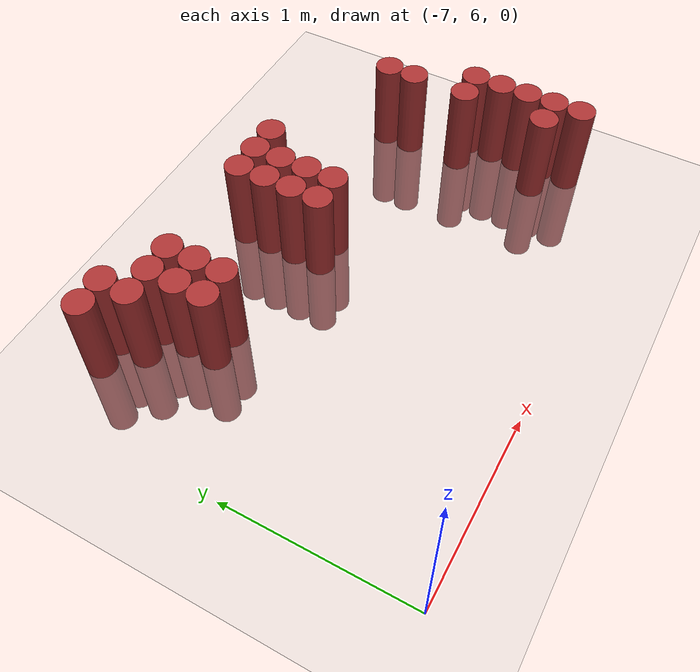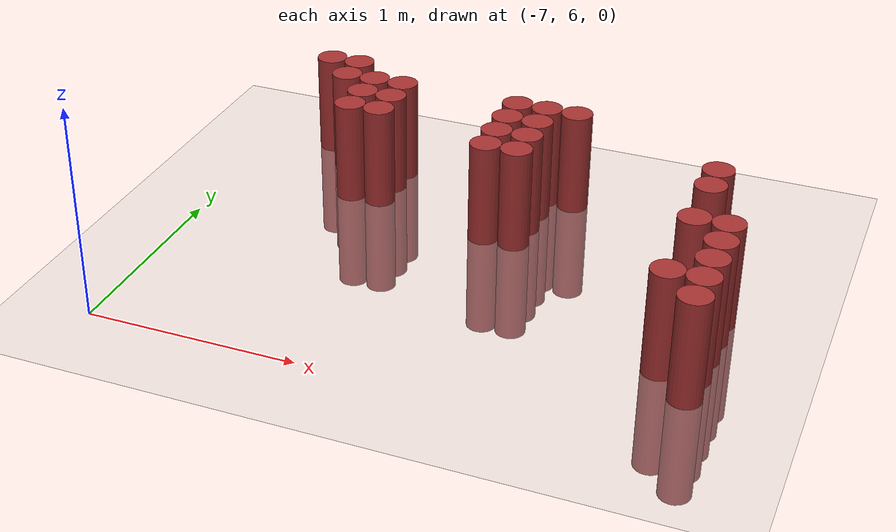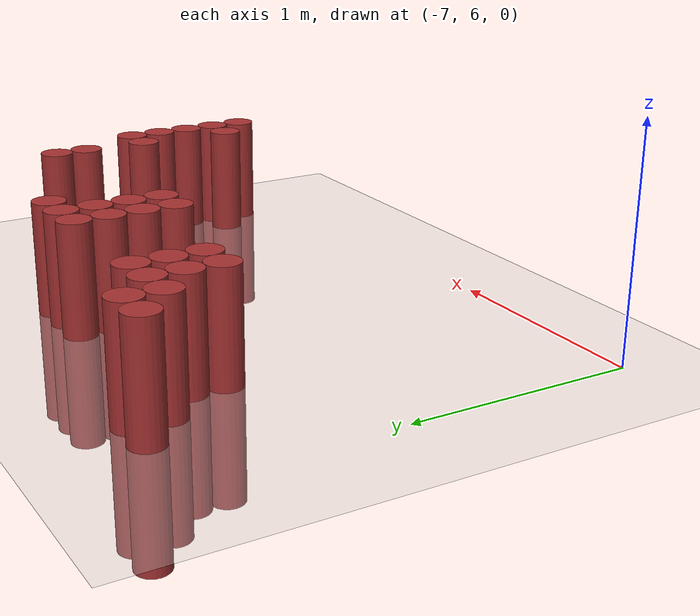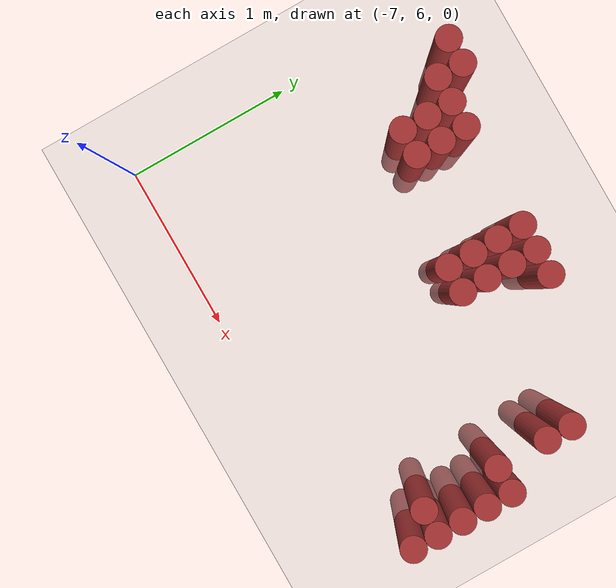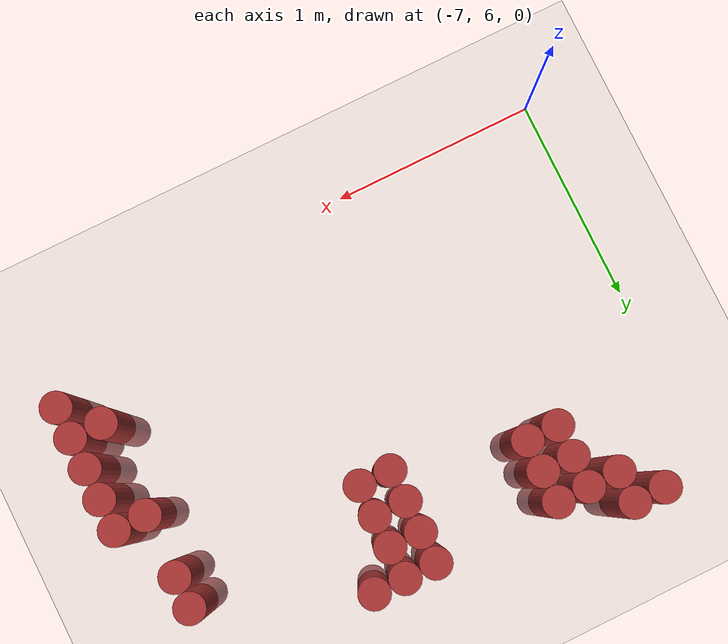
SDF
<sdf version="1.6">
 <world name="default">
  <model name="ground_plane">
   <static>1</static>
   <link name="link">
    <collision name="collision">
     <geometry><plane><normal>0 0 1</normal><size>100 100</size></plane></geometry>
     <surface><friction><ode><mu>100</mu><mu2>50</mu2></ode></friction></surface>
    </collision>
    <visual name="visual">
     <cast_shadows>0</cast_shadows>
     <geometry><plane><normal>0 0 1</normal><size>100 100</size></plane></geometry>
     <material>
      <script><uri>file://media/materials/scripts/gazebo.material</uri><name>Gazebo/Grey</name></script>
     </material>
    </visual>
   </link>
  </model>
  <model name="unit_cylinder_218">
   <static>1</static>
   <pose>-6.675000 7.875000 0.000000 0.000000 0.000000 0.000000</pose>
   <link name="link">
    <inertial>
     <mass>1</mass>
     <inertia><ixx>0.145833</ixx><ixy>0</ixy><ixz>0</ixz><iyy>0.145833</iyy><iyz>0</iyz><izz>0.125</izz></inertia>
    </inertial>
    <collision name="collision">
     <geometry><cylinder><radius>0.075000</radius><length>1</length></cylinder></geometry>
    </collision>
    <visual name="visual">
     <geometry><cylinder><radius>0.075000</radius><length>1</length></cylinder></geometry>
     <material>
      <ambient>0.648000 0.192000 0.192000 1</ambient>
      <diffuse>0.648000 0.192000 0.192000 1</diffuse>
     </material>
     <material>
      <script><name>Gazebo/Grey</name><uri>file://media/materials/scripts/gazebo.material</uri></script>
     </material>
    </visual>
   </link>
  </model>
  <model name="unit_cylinder_226">
   <static>1</static>
   <pose>-6.525000 7.725000 0.000000 0.000000 0.000000 0.000000</pose>
   <link name="link">
    <inertial>
     <mass>1</mass>
     <inertia><ixx>0.145833</ixx><ixy>0</ixy><ixz>0</ixz><iyy>0.145833</iyy><iyz>0</iyz><izz>0.125</izz></inertia>
    </inertial>
    <collision name="collision">
     <geometry><cylinder><radius>0.075000</radius><length>1</length></cylinder></geometry>
    </collision>
    <visual name="visual">
     <geometry><cylinder><radius>0.075000</radius><length>1</length></cylinder></geometry>
     <material>
      <ambient>0.648000 0.192000 0.192000 1</ambient>
      <diffuse>0.648000 0.192000 0.192000 1</diffuse>
     </material>
     <material>
      <script><name>Gazebo/Grey</name><uri>file://media/materials/scripts/gazebo.material</uri></script>
     </material>
    </visual>
   </link>
  </model>
  <model name="unit_cylinder_227">
   <static>1</static>
   <pose>-6.525000 7.875000 0.000000 0.000000 0.000000 0.000000</pose>
   <link name="link">
    <inertial>
     <mass>1</mass>
     <inertia><ixx>0.145833</ixx><ixy>0</ixy><ixz>0</ixz><iyy>0.145833</iyy><iyz>0</iyz><izz>0.125</izz></inertia>
    </inertial>
    <collision name="collision">
     <geometry><cylinder><radius>0.075000</radius><length>1</length></cylinder></geometry>
    </collision>
    <visual name="visual">
     <geometry><cylinder><radius>0.075000</radius><length>1</length></cylinder></geometry>
     <material>
      <ambient>0.648000 0.192000 0.192000 1</ambient>
      <diffuse>0.648000 0.192000 0.192000 1</diffuse>
     </material>
     <material>
      <script><name>Gazebo/Grey</name><uri>file://media/materials/scripts/gazebo.material</uri></script>
     </material>
    </visual>
   </link>
  </model>
  <model name="unit_cylinder_233">
   <static>1</static>
   <pose>-6.375000 7.425000 0.000000 0.000000 0.000000 0.000000</pose>
   <link name="link">
    <inertial>
     <mass>1</mass>
     <inertia><ixx>0.145833</ixx><ixy>0</ixy><ixz>0</ixz><iyy>0.145833</iyy><iyz>0</iyz><izz>0.125</izz></inertia>
    </inertial>
    <collision name="collision">
     <geometry><cylinder><radius>0.075000</radius><length>1</length></cylinder></geometry>
    </collision>
    <visual name="visual">
     <geometry><cylinder><radius>0.075000</radius><length>1</length></cylinder></geometry>
     <material>
      <ambient>0.648000 0.192000 0.192000 1</ambient>
      <diffuse>0.648000 0.192000 0.192000 1</diffuse>
     </material>
     <material>
      <script><name>Gazebo/Grey</name><uri>file://media/materials/scripts/gazebo.material</uri></script>
     </material>
    </visual>
   </link>
  </model>
  <model name="unit_cylinder_234">
   <static>1</static>
   <pose>-6.375000 7.575000 0.000000 0.000000 0.000000 0.000000</pose>
   <link name="link">
    <inertial>
     <mass>1</mass>
     <inertia><ixx>0.145833</ixx><ixy>0</ixy><ixz>0</ixz><iyy>0.145833</iyy><iyz>0</iyz><izz>0.125</izz></inertia>
    </inertial>
    <collision name="collision">
     <geometry><cylinder><radius>0.075000</radius><length>1</length></cylinder></geometry>
    </collision>
    <visual name="visual">
     <geometry><cylinder><radius>0.075000</radius><length>1</length></cylinder></geometry>
     <material>
      <ambient>0.648000 0.192000 0.192000 1</ambient>
      <diffuse>0.648000 0.192000 0.192000 1</diffuse>
     </material>
     <material>
      <script><name>Gazebo/Grey</name><uri>file://media/materials/scripts/gazebo.material</uri></script>
     </material>
    </visual>
   </link>
  </model>
  <model name="unit_cylinder_235">
   <static>1</static>
   <pose>-6.375000 7.725000 0.000000 0.000000 0.000000 0.000000</pose>
   <link name="link">
    <inertial>
     <mass>1</mass>
     <inertia><ixx>0.145833</ixx><ixy>0</ixy><ixz>0</ixz><iyy>0.145833</iyy><iyz>0</iyz><izz>0.125</izz></inertia>
    </inertial>
    <collision name="collision">
     <geometry><cylinder><radius>0.075000</radius><length>1</length></cylinder></geometry>
    </collision>
    <visual name="visual">
     <geometry><cylinder><radius>0.075000</radius><length>1</length></cylinder></geometry>
     <material>
      <ambient>0.648000 0.192000 0.192000 1</ambient>
      <diffuse>0.648000 0.192000 0.192000 1</diffuse>
     </material>
     <material>
      <script><name>Gazebo/Grey</name><uri>file://media/materials/scripts/gazebo.material</uri></script>
     </material>
    </visual>
   </link>
  </model>
  <model name="unit_cylinder_241">
   <static>1</static>
   <pose>-6.225000 7.425000 0.000000 0.000000 0.000000 0.000000</pose>
   <link name="link">
    <inertial>
     <mass>1</mass>
     <inertia><ixx>0.145833</ixx><ixy>0</ixy><ixz>0</ixz><iyy>0.145833</iyy><iyz>0</iyz><izz>0.125</izz></inertia>
    </inertial>
    <collision name="collision">
     <geometry><cylinder><radius>0.075000</radius><length>1</length></cylinder></geometry>
    </collision>
    <visual name="visual">
     <geometry><cylinder><radius>0.075000</radius><length>1</length></cylinder></geometry>
     <material>
      <ambient>0.648000 0.192000 0.192000 1</ambient>
      <diffuse>0.648000 0.192000 0.192000 1</diffuse>
     </material>
     <material>
      <script><name>Gazebo/Grey</name><uri>file://media/materials/scripts/gazebo.material</uri></script>
     </material>
    </visual>
   </link>
  </model>
  <model name="unit_cylinder_242">
   <static>1</static>
   <pose>-6.225000 7.575000 0.000000 0.000000 0.000000 0.000000</pose>
   <link name="link">
    <inertial>
     <mass>1</mass>
     <inertia><ixx>0.145833</ixx><ixy>0</ixy><ixz>0</ixz><iyy>0.145833</iyy><iyz>0</iyz><izz>0.125</izz></inertia>
    </inertial>
    <collision name="collision">
     <geometry><cylinder><radius>0.075000</radius><length>1</length></cylinder></geometry>
    </collision>
    <visual name="visual">
     <geometry><cylinder><radius>0.075000</radius><length>1</length></cylinder></geometry>
     <material>
      <ambient>0.648000 0.192000 0.192000 1</ambient>
      <diffuse>0.648000 0.192000 0.192000 1</diffuse>
     </material>
     <material>
      <script><name>Gazebo/Grey</name><uri>file://media/materials/scripts/gazebo.material</uri></script>
     </material>
    </visual>
   </link>
  </model>
  <model name="unit_cylinder_243">
   <static>1</static>
   <pose>-6.225000 7.725000 0.000000 0.000000 0.000000 0.000000</pose>
   <link name="link">
    <inertial>
     <mass>1</mass>
     <inertia><ixx>0.145833</ixx><ixy>0</ixy><ixz>0</ixz><iyy>0.145833</iyy><iyz>0</iyz><izz>0.125</izz></inertia>
    </inertial>
    <collision name="collision">
     <geometry><cylinder><radius>0.075000</radius><length>1</length></cylinder></geometry>
    </collision>
    <visual name="visual">
     <geometry><cylinder><radius>0.075000</radius><length>1</length></cylinder></geometry>
     <material>
      <ambient>0.648000 0.192000 0.192000 1</ambient>
      <diffuse>0.648000 0.192000 0.192000 1</diffuse>
     </material>
     <material>
      <script><name>Gazebo/Grey</name><uri>file://media/materials/scripts/gazebo.material</uri></script>
     </material>
    </visual>
   </link>
  </model>
  <model name="unit_cylinder_257">
   <static>1</static>
   <pose>-5.625000 7.275000 0.000000 0.000000 0.000000 0.000000</pose>
   <link name="link">
    <inertial>
     <mass>1</mass>
     <inertia><ixx>0.145833</ixx><ixy>0</ixy><ixz>0</ixz><iyy>0.145833</iyy><iyz>0</iyz><izz>0.125</izz></inertia>
    </inertial>
    <collision name="collision">
     <geometry><cylinder><radius>0.075000</radius><length>1</length></cylinder></geometry>
    </collision>
    <visual name="visual">
     <geometry><cylinder><radius>0.075000</radius><length>1</length></cylinder></geometry>
     <material>
      <ambient>0.648000 0.192000 0.192000 1</ambient>
      <diffuse>0.648000 0.192000 0.192000 1</diffuse>
     </material>
     <material>
      <script><name>Gazebo/Grey</name><uri>file://media/materials/scripts/gazebo.material</uri></script>
     </material>
    </visual>
   </link>
  </model>
  <model name="unit_cylinder_258">
   <static>1</static>
   <pose>-5.625000 7.425000 0.000000 0.000000 0.000000 0.000000</pose>
   <link name="link">
    <inertial>
     <mass>1</mass>
     <inertia><ixx>0.145833</ixx><ixy>0</ixy><ixz>0</ixz><iyy>0.145833</iyy><iyz>0</iyz><izz>0.125</izz></inertia>
    </inertial>
    <collision name="collision">
     <geometry><cylinder><radius>0.075000</radius><length>1</length></cylinder></geometry>
    </collision>
    <visual name="visual">
     <geometry><cylinder><radius>0.075000</radius><length>1</length></cylinder></geometry>
     <material>
      <ambient>0.648000 0.192000 0.192000 1</ambient>
      <diffuse>0.648000 0.192000 0.192000 1</diffuse>
     </material>
     <material>
      <script><name>Gazebo/Grey</name><uri>file://media/materials/scripts/gazebo.material</uri></script>
     </material>
    </visual>
   </link>
  </model>
  <model name="unit_cylinder_259">
   <static>1</static>
   <pose>-5.625000 7.575000 0.000000 0.000000 0.000000 0.000000</pose>
   <link name="link">
    <inertial>
     <mass>1</mass>
     <inertia><ixx>0.145833</ixx><ixy>0</ixy><ixz>0</ixz><iyy>0.145833</iyy><iyz>0</iyz><izz>0.125</izz></inertia>
    </inertial>
    <collision name="collision">
     <geometry><cylinder><radius>0.075000</radius><length>1</length></cylinder></geometry>
    </collision>
    <visual name="visual">
     <geometry><cylinder><radius>0.075000</radius><length>1</length></cylinder></geometry>
     <material>
      <ambient>0.648000 0.192000 0.192000 1</ambient>
      <diffuse>0.648000 0.192000 0.192000 1</diffuse>
     </material>
     <material>
      <script><name>Gazebo/Grey</name><uri>file://media/materials/scripts/gazebo.material</uri></script>
     </material>
    </visual>
   </link>
  </model>
  <model name="unit_cylinder_260">
   <static>1</static>
   <pose>-5.625000 7.725000 0.000000 0.000000 0.000000 0.000000</pose>
   <link name="link">
    <inertial>
     <mass>1</mass>
     <inertia><ixx>0.145833</ixx><ixy>0</ixy><ixz>0</ixz><iyy>0.145833</iyy><iyz>0</iyz><izz>0.125</izz></inertia>
    </inertial>
    <collision name="collision">
     <geometry><cylinder><radius>0.075000</radius><length>1</length></cylinder></geometry>
    </collision>
    <visual name="visual">
     <geometry><cylinder><radius>0.075000</radius><length>1</length></cylinder></geometry>
     <material>
      <ambient>0.648000 0.192000 0.192000 1</ambient>
      <diffuse>0.648000 0.192000 0.192000 1</diffuse>
     </material>
     <material>
      <script><name>Gazebo/Grey</name><uri>file://media/materials/scripts/gazebo.material</uri></script>
     </material>
    </visual>
   </link>
  </model>
  <model name="unit_cylinder_262">
   <static>1</static>
   <pose>-5.475000 7.275000 0.000000 0.000000 0.000000 0.000000</pose>
   <link name="link">
    <inertial>
     <mass>1</mass>
     <inertia><ixx>0.145833</ixx><ixy>0</ixy><ixz>0</ixz><iyy>0.145833</iyy><iyz>0</iyz><izz>0.125</izz></inertia>
    </inertial>
    <collision name="collision">
     <geometry><cylinder><radius>0.075000</radius><length>1</length></cylinder></geometry>
    </collision>
    <visual name="visual">
     <geometry><cylinder><radius>0.075000</radius><length>1</length></cylinder></geometry>
     <material>
      <ambient>0.648000 0.192000 0.192000 1</ambient>
      <diffuse>0.648000 0.192000 0.192000 1</diffuse>
     </material>
     <material>
      <script><name>Gazebo/Grey</name><uri>file://media/materials/scripts/gazebo.material</uri></script>
     </material>
    </visual>
   </link>
  </model>
  <model name="unit_cylinder_263">
   <static>1</static>
   <pose>-5.475000 7.425000 0.000000 0.000000 0.000000 0.000000</pose>
   <link name="link">
    <inertial>
     <mass>1</mass>
     <inertia><ixx>0.145833</ixx><ixy>0</ixy><ixz>0</ixz><iyy>0.145833</iyy><iyz>0</iyz><izz>0.125</izz></inertia>
    </inertial>
    <collision name="collision">
     <geometry><cylinder><radius>0.075000</radius><length>1</length></cylinder></geometry>
    </collision>
    <visual name="visual">
     <geometry><cylinder><radius>0.075000</radius><length>1</length></cylinder></geometry>
     <material>
      <ambient>0.648000 0.192000 0.192000 1</ambient>
      <diffuse>0.648000 0.192000 0.192000 1</diffuse>
     </material>
     <material>
      <script><name>Gazebo/Grey</name><uri>file://media/materials/scripts/gazebo.material</uri></script>
     </material>
    </visual>
   </link>
  </model>
  <model name="unit_cylinder_264">
   <static>1</static>
   <pose>-5.475000 7.575000 0.000000 0.000000 0.000000 0.000000</pose>
   <link name="link">
    <inertial>
     <mass>1</mass>
     <inertia><ixx>0.145833</ixx><ixy>0</ixy><ixz>0</ixz><iyy>0.145833</iyy><iyz>0</iyz><izz>0.125</izz></inertia>
    </inertial>
    <collision name="collision">
     <geometry><cylinder><radius>0.075000</radius><length>1</length></cylinder></geometry>
    </collision>
    <visual name="visual">
     <geometry><cylinder><radius>0.075000</radius><length>1</length></cylinder></geometry>
     <material>
      <ambient>0.648000 0.192000 0.192000 1</ambient>
      <diffuse>0.648000 0.192000 0.192000 1</diffuse>
     </material>
     <material>
      <script><name>Gazebo/Grey</name><uri>file://media/materials/scripts/gazebo.material</uri></script>
     </material>
    </visual>
   </link>
  </model>
  <model name="unit_cylinder_265">
   <static>1</static>
   <pose>-5.475000 7.725000 0.000000 0.000000 0.000000 0.000000</pose>
   <link name="link">
    <inertial>
     <mass>1</mass>
     <inertia><ixx>0.145833</ixx><ixy>0</ixy><ixz>0</ixz><iyy>0.145833</iyy><iyz>0</iyz><izz>0.125</izz></inertia>
    </inertial>
    <collision name="collision">
     <geometry><cylinder><radius>0.075000</radius><length>1</length></cylinder></geometry>
    </collision>
    <visual name="visual">
     <geometry><cylinder><radius>0.075000</radius><length>1</length></cylinder></geometry>
     <material>
      <ambient>0.648000 0.192000 0.192000 1</ambient>
      <diffuse>0.648000 0.192000 0.192000 1</diffuse>
     </material>
     <material>
      <script><name>Gazebo/Grey</name><uri>file://media/materials/scripts/gazebo.material</uri></script>
     </material>
    </visual>
   </link>
  </model>
  <model name="unit_cylinder_267">
   <static>1</static>
   <pose>-5.325000 7.725000 0.000000 0.000000 0.000000 0.000000</pose>
   <link name="link">
    <inertial>
     <mass>1</mass>
     <inertia><ixx>0.145833</ixx><ixy>0</ixy><ixz>0</ixz><iyy>0.145833</iyy><iyz>0</iyz><izz>0.125</izz></inertia>
    </inertial>
    <collision name="collision">
     <geometry><cylinder><radius>0.075000</radius><length>1</length></cylinder></geometry>
    </collision>
    <visual name="visual">
     <geometry><cylinder><radius>0.075000</radius><length>1</length></cylinder></geometry>
     <material>
      <ambient>0.648000 0.192000 0.192000 1</ambient>
      <diffuse>0.648000 0.192000 0.192000 1</diffuse>
     </material>
     <material>
      <script><name>Gazebo/Grey</name><uri>file://media/materials/scripts/gazebo.material</uri></script>
     </material>
    </visual>
   </link>
  </model>
  <model name="unit_cylinder_271">
   <static>1</static>
   <pose>-4.575000 6.525000 0.000000 0.000000 0.000000 0.000000</pose>
   <link name="link">
    <inertial>
     <mass>1</mass>
     <inertia><ixx>0.145833</ixx><ixy>0</ixy><ixz>0</ixz><iyy>0.145833</iyy><iyz>0</iyz><izz>0.125</izz></inertia>
    </inertial>
    <collision name="collision">
     <geometry><cylinder><radius>0.075000</radius><length>1</length></cylinder></geometry>
    </collision>
    <visual name="visual">
     <geometry><cylinder><radius>0.075000</radius><length>1</length></cylinder></geometry>
     <material>
      <ambient>0.648000 0.192000 0.192000 1</ambient>
      <diffuse>0.648000 0.192000 0.192000 1</diffuse>
     </material>
     <material>
      <script><name>Gazebo/Grey</name><uri>file://media/materials/scripts/gazebo.material</uri></script>
     </material>
    </visual>
   </link>
  </model>
  <model name="unit_cylinder_272">
   <static>1</static>
   <pose>-4.575000 6.975000 0.000000 0.000000 0.000000 0.000000</pose>
   <link name="link">
    <inertial>
     <mass>1</mass>
     <inertia><ixx>0.145833</ixx><ixy>0</ixy><ixz>0</ixz><iyy>0.145833</iyy><iyz>0</iyz><izz>0.125</izz></inertia>
    </inertial>
    <collision name="collision">
     <geometry><cylinder><radius>0.075000</radius><length>1</length></cylinder></geometry>
    </collision>
    <visual name="visual">
     <geometry><cylinder><radius>0.075000</radius><length>1</length></cylinder></geometry>
     <material>
      <ambient>0.648000 0.192000 0.192000 1</ambient>
      <diffuse>0.648000 0.192000 0.192000 1</diffuse>
     </material>
     <material>
      <script><name>Gazebo/Grey</name><uri>file://media/materials/scripts/gazebo.material</uri></script>
     </material>
    </visual>
   </link>
  </model>
  <model name="unit_cylinder_273">
   <static>1</static>
   <pose>-4.575000 7.275000 0.000000 0.000000 0.000000 0.000000</pose>
   <link name="link">
    <inertial>
     <mass>1</mass>
     <inertia><ixx>0.145833</ixx><ixy>0</ixy><ixz>0</ixz><iyy>0.145833</iyy><iyz>0</iyz><izz>0.125</izz></inertia>
    </inertial>
    <collision name="collision">
     <geometry><cylinder><radius>0.075000</radius><length>1</length></cylinder></geometry>
    </collision>
    <visual name="visual">
     <geometry><cylinder><radius>0.075000</radius><length>1</length></cylinder></geometry>
     <material>
      <ambient>0.648000 0.192000 0.192000 1</ambient>
      <diffuse>0.648000 0.192000 0.192000 1</diffuse>
     </material>
     <material>
      <script><name>Gazebo/Grey</name><uri>file://media/materials/scripts/gazebo.material</uri></script>
     </material>
    </visual>
   </link>
  </model>
  <model name="unit_cylinder_274">
   <static>1</static>
   <pose>-4.575000 7.425000 0.000000 0.000000 0.000000 0.000000</pose>
   <link name="link">
    <inertial>
     <mass>1</mass>
     <inertia><ixx>0.145833</ixx><ixy>0</ixy><ixz>0</ixz><iyy>0.145833</iyy><iyz>0</iyz><izz>0.125</izz></inertia>
    </inertial>
    <collision name="collision">
     <geometry><cylinder><radius>0.075000</radius><length>1</length></cylinder></geometry>
    </collision>
    <visual name="visual">
     <geometry><cylinder><radius>0.075000</radius><length>1</length></cylinder></geometry>
     <material>
      <ambient>0.648000 0.192000 0.192000 1</ambient>
      <diffuse>0.648000 0.192000 0.192000 1</diffuse>
     </material>
     <material>
      <script><name>Gazebo/Grey</name><uri>file://media/materials/scripts/gazebo.material</uri></script>
     </material>
    </visual>
   </link>
  </model>
  <model name="unit_cylinder_279">
   <static>1</static>
   <pose>-4.425000 6.375000 0.000000 0.000000 0.000000 0.000000</pose>
   <link name="link">
    <inertial>
     <mass>1</mass>
     <inertia><ixx>0.145833</ixx><ixy>0</ixy><ixz>0</ixz><iyy>0.145833</iyy><iyz>0</iyz><izz>0.125</izz></inertia>
    </inertial>
    <collision name="collision">
     <geometry><cylinder><radius>0.075000</radius><length>1</length></cylinder></geometry>
    </collision>
    <visual name="visual">
     <geometry><cylinder><radius>0.075000</radius><length>1</length></cylinder></geometry>
     <material>
      <ambient>0.648000 0.192000 0.192000 1</ambient>
      <diffuse>0.648000 0.192000 0.192000 1</diffuse>
     </material>
     <material>
      <script><name>Gazebo/Grey</name><uri>file://media/materials/scripts/gazebo.material</uri></script>
     </material>
    </visual>
   </link>
  </model>
  <model name="unit_cylinder_280">
   <static>1</static>
   <pose>-4.425000 6.525000 0.000000 0.000000 0.000000 0.000000</pose>
   <link name="link">
    <inertial>
     <mass>1</mass>
     <inertia><ixx>0.145833</ixx><ixy>0</ixy><ixz>0</ixz><iyy>0.145833</iyy><iyz>0</iyz><izz>0.125</izz></inertia>
    </inertial>
    <collision name="collision">
     <geometry><cylinder><radius>0.075000</radius><length>1</length></cylinder></geometry>
    </collision>
    <visual name="visual">
     <geometry><cylinder><radius>0.075000</radius><length>1</length></cylinder></geometry>
     <material>
      <ambient>0.648000 0.192000 0.192000 1</ambient>
      <diffuse>0.648000 0.192000 0.192000 1</diffuse>
     </material>
     <material>
      <script><name>Gazebo/Grey</name><uri>file://media/materials/scripts/gazebo.material</uri></script>
     </material>
    </visual>
   </link>
  </model>
  <model name="unit_cylinder_281">
   <static>1</static>
   <pose>-4.425000 6.675000 0.000000 0.000000 0.000000 0.000000</pose>
   <link name="link">
    <inertial>
     <mass>1</mass>
     <inertia><ixx>0.145833</ixx><ixy>0</ixy><ixz>0</ixz><iyy>0.145833</iyy><iyz>0</iyz><izz>0.125</izz></inertia>
    </inertial>
    <collision name="collision">
     <geometry><cylinder><radius>0.075000</radius><length>1</length></cylinder></geometry>
    </collision>
    <visual name="visual">
     <geometry><cylinder><radius>0.075000</radius><length>1</length></cylinder></geometry>
     <material>
      <ambient>0.648000 0.192000 0.192000 1</ambient>
      <diffuse>0.648000 0.192000 0.192000 1</diffuse>
     </material>
     <material>
      <script><name>Gazebo/Grey</name><uri>file://media/materials/scripts/gazebo.material</uri></script>
     </material>
    </visual>
   </link>
  </model>
  <model name="unit_cylinder_282">
   <static>1</static>
   <pose>-4.425000 6.825000 0.000000 0.000000 0.000000 0.000000</pose>
   <link name="link">
    <inertial>
     <mass>1</mass>
     <inertia><ixx>0.145833</ixx><ixy>0</ixy><ixz>0</ixz><iyy>0.145833</iyy><iyz>0</iyz><izz>0.125</izz></inertia>
    </inertial>
    <collision name="collision">
     <geometry><cylinder><radius>0.075000</radius><length>1</length></cylinder></geometry>
    </collision>
    <visual name="visual">
     <geometry><cylinder><radius>0.075000</radius><length>1</length></cylinder></geometry>
     <material>
      <ambient>0.648000 0.192000 0.192000 1</ambient>
      <diffuse>0.648000 0.192000 0.192000 1</diffuse>
     </material>
     <material>
      <script><name>Gazebo/Grey</name><uri>file://media/materials/scripts/gazebo.material</uri></script>
     </material>
    </visual>
   </link>
  </model>
  <model name="unit_cylinder_283">
   <static>1</static>
   <pose>-4.425000 6.975000 0.000000 0.000000 0.000000 0.000000</pose>
   <link name="link">
    <inertial>
     <mass>1</mass>
     <inertia><ixx>0.145833</ixx><ixy>0</ixy><ixz>0</ixz><iyy>0.145833</iyy><iyz>0</iyz><izz>0.125</izz></inertia>
    </inertial>
    <collision name="collision">
     <geometry><cylinder><radius>0.075000</radius><length>1</length></cylinder></geometry>
    </collision>
    <visual name="visual">
     <geometry><cylinder><radius>0.075000</radius><length>1</length></cylinder></geometry>
     <material>
      <ambient>0.648000 0.192000 0.192000 1</ambient>
      <diffuse>0.648000 0.192000 0.192000 1</diffuse>
     </material>
     <material>
      <script><name>Gazebo/Grey</name><uri>file://media/materials/scripts/gazebo.material</uri></script>
     </material>
    </visual>
   </link>
  </model>
 </world>
</sdf>
